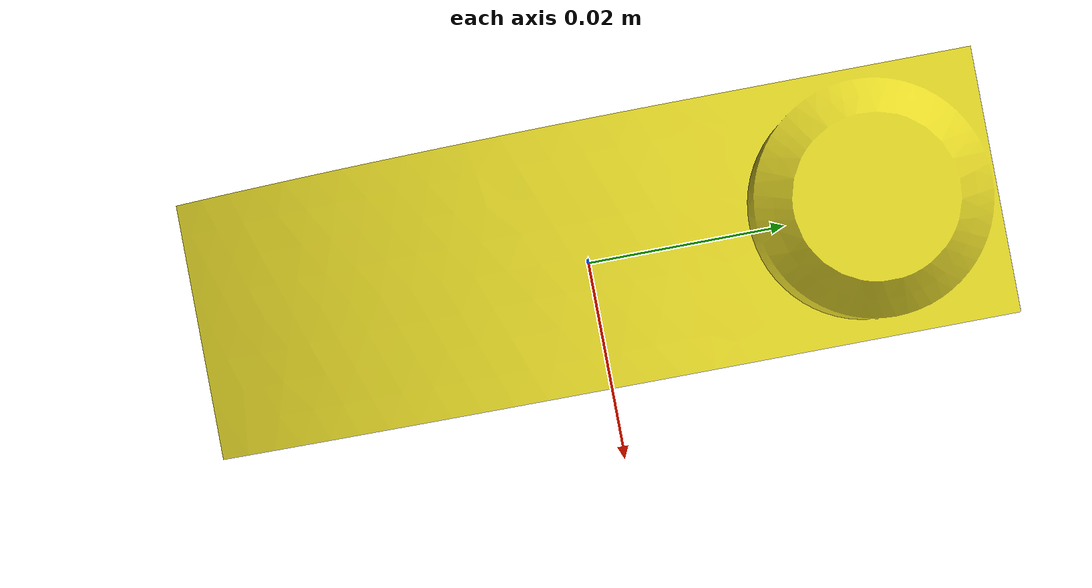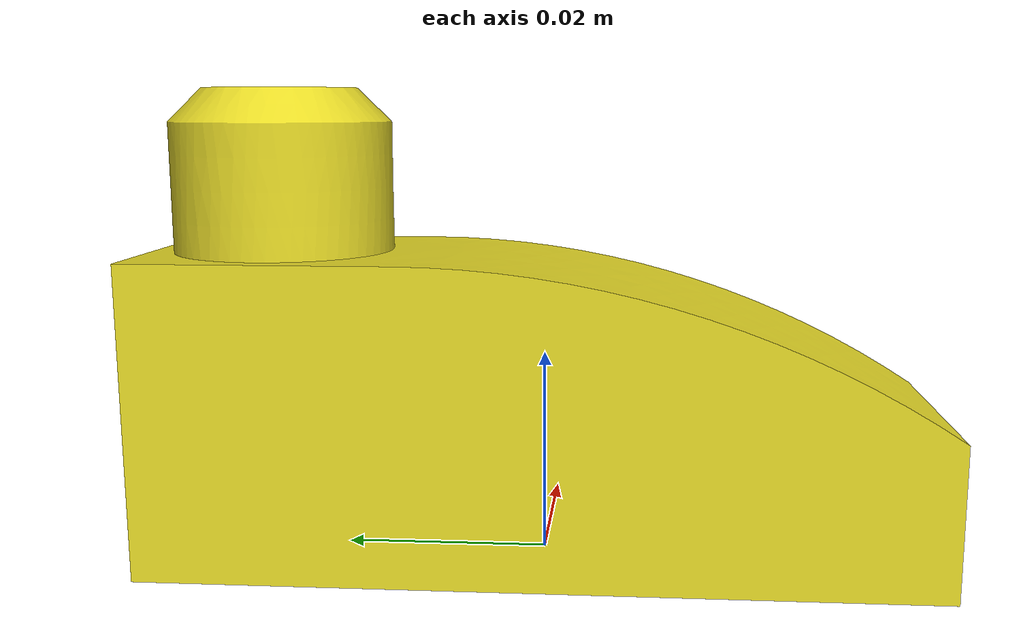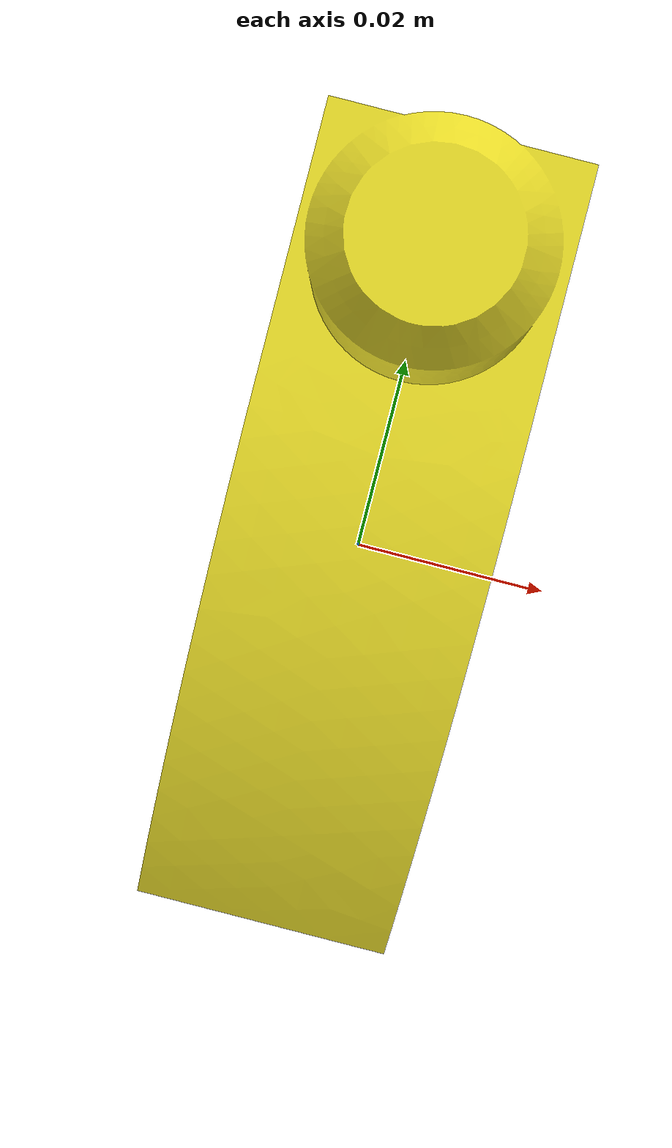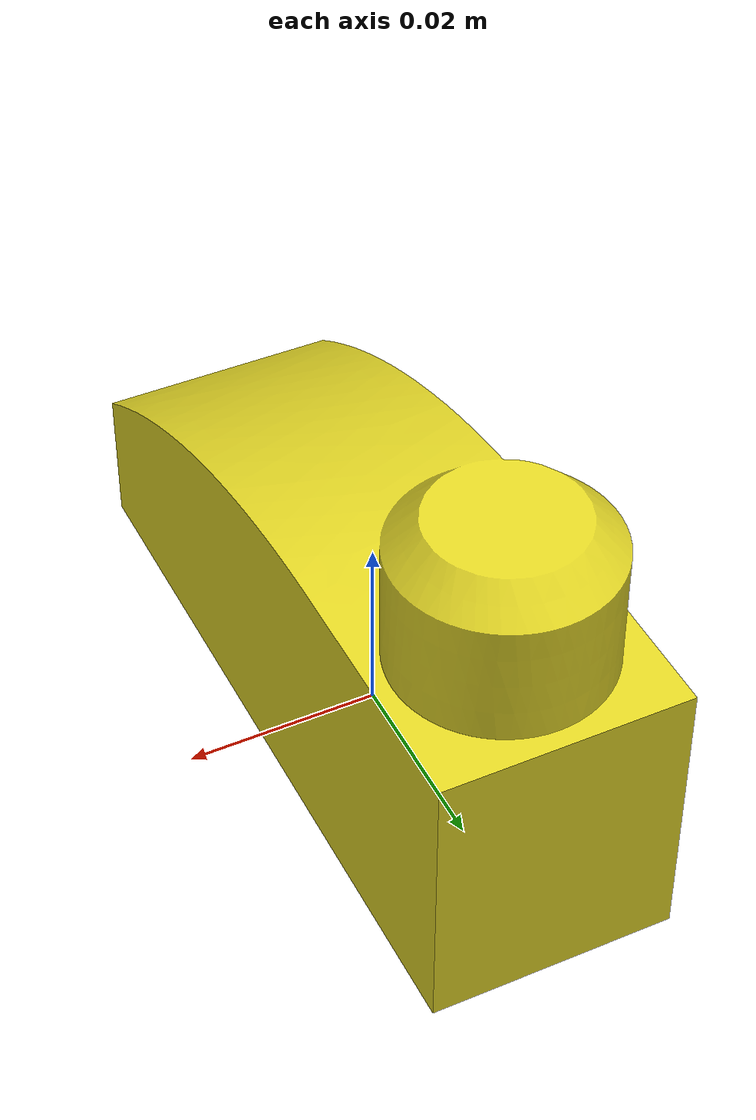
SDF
<?xml version='1.0'?>
<sdf version="1.6">

         <model name="mesh">
             <static>0</static>
             <self_collide>0</self_collide>
             <allow_auto_disable>1</allow_auto_disable>

             <pose>0 0 0 0 -0 0</pose>

             <link name="link">

                 <gravity>1</gravity>
                 <self_collide>0</self_collide>
                 <kinematic>0</kinematic>

               <pose>0 0 0 0 -0 0</pose>

                <inertial>

                    <mass> 1.0 </mass>

                    <pose> -2.3000000000e-07  6.7072100000e-03  2.3563900000e-02 0 0 0 </pose>

                    <inertia>
                        <ixx>  1.0341730820e-03 </ixx>
                        <ixy> -1.6151550756e-08 </ixy>
                        <ixz> -3.3374999300e-09 </ixz>
                        <iyy>  3.4911014213e-04 </iyy>
                        <iyz> -1.3833746582e-04 </iyz>
                        <izz>  9.6627051314e-04 </izz>
                    </inertia>
                </inertial>

                 <collision name="collision">

                     <max_contacts>20</max_contacts>

                    <pose>0 0 0 0 -0 0</pose>

                     <geometry>
                         <mesh>
                             <uri>model://X1-Y3-Z2-FILLET/mesh/X1-Y3-Z2-FILLET.stl</uri>

                             <scale>0.8 0.8 0.8</scale>
                         </mesh>
                     </geometry>

                     <surface></surface>
                 </collision>

                 <visual name="visual">
                     <cast_shadows>1</cast_shadows>
                     <transparency>0</transparency>

                     <pose>0 0 0 0 -0 0</pose>

                     <material>

                         <script>
                             <uri>file://media/materials/scripts/gazebo.material</uri>

                             <name>Gazebo/DarkYellow</name>
                         </script>
                         <shader type="vertex">
                           <normal_map>__default__</normal_map>
                         </shader>

                     </material>

                     <geometry>
                         <mesh>
                             <uri>model://X1-Y3-Z2-FILLET/mesh/X1-Y3-Z2-FILLET.stl</uri>

                             <scale>0.8 0.8 0.8</scale>
                         </mesh>
                     </geometry>
                 </visual>
             </link>
         </model>
     </sdf>
